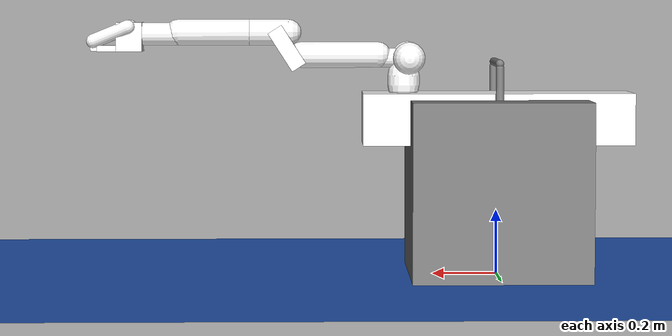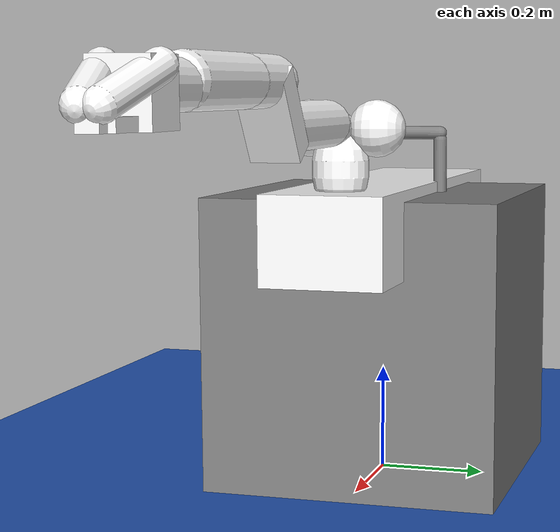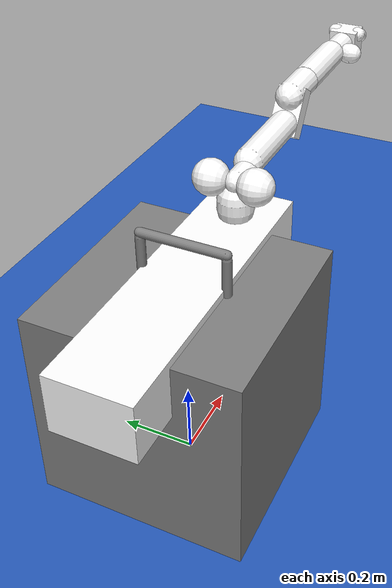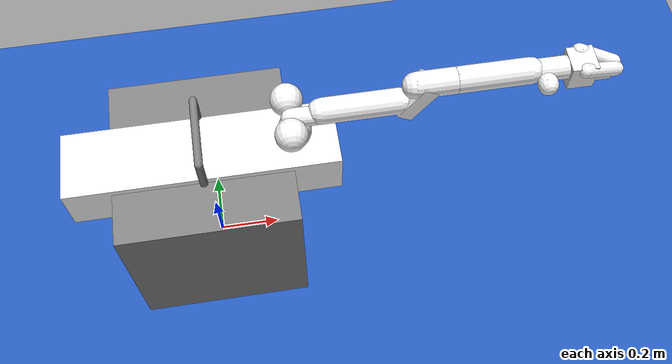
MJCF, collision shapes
<mujoco model="spot_standing_box">
<!-- Copyright (c) 2023 Robotics and AI Institute LLC dba RAI Institute. All rights reserved. -->
  <include file="spot_components/params_and_default.xml" />
  <include file="spot_components/assets.xml" />

  <worldbody>
    <geom name="ground" type="plane" size="2 2 0.01" friction="0.7" priority="5" material="blue_grid"/>

    <include file="spot_components/box_with_handle.xml" />

    <body name="body" pos="0 0 0.49">
      <inertial mass="32.86" pos="0 0 0" diaginertia="0.13143999874591827 0.13143999874591827 0.13143999874591827"/>
      <geom name="body_visual" class="visual" mesh="body_visual" material="yellow"/>
      <geom name="body" class="collision" type="box" size="0.42 0.11 0.08"/>
      <site name="site_body" pos="0 0 0" size="0.01"/>

      <!-- We can deactivate the fixed legs for faster simulation.  -->
      <!-- We'll reactivate them if they are critical. -->

      <include file="spot_components/arm_primitive.xml" />
    </body>
  </worldbody>

  <!-- for some reason necessary here but not for floating spot-->
  <contact>
    <exclude body1="body" body2="arm_link_sh0"/>
  </contact>

  <keyframe>
    <!-- mujoco q = [object_xyz, object_q, arm_and_gripper_pos] -->
    <key name="home" qpos="0 0 0.275  0 0 0 0  0 0 0 0 0 0  0" />
  </keyframe>

  <include file="spot_components/actuators_sensors.xml" />
</mujoco>

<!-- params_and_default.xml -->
<mujoco model="spot_default">
<!-- Copyright (c) 2023 Robotics and AI Institute LLC dba RAI Institute. All rights reserved. -->
  <compiler angle="radian" meshdir="../../meshes/spot/" autolimits="true"/>

  <option timestep="0.003" solver="Newton" density="1">
    <!-- iterations="5" ls_iterations="10" -->
  </option>

  <default>
    <default class="base">
      <joint damping="100" range="-5 5"/>
      <position kp="10" ctrlrange="-10 10" forcerange="-1000 1000"/>
    </default>
    <!-- The arm damping is higher than the damping gains in spot-sim, because actual joint damping is unknown -->
    <default class="arm">
      <default class="arm_sh0">
        <joint damping="51.0" range="-2.61799387799149441136 3.14159265358979311599"/>
        <position kp="1020.0" ctrlrange="-2.61799387799149441136 3.14159265358979311599" forcerange="-90.9 90.0"/>
      </default>
      <default class="arm_sh1">
        <joint damping="76.5" range="-3.14159265358979311599 0.52359877559829881565"/>
        <position kp="255" ctrlrange="-3.14159265358979311599 0.52359877559829881565" forcerange="-181.8 181.8"/>
      </default>
      <default class="arm_el0">
        <joint damping="51.0" range="0 3.14159265358979311599"/>
        <position kp="204.0" ctrlrange="0 3.14159265358979311599" forcerange="-90.9 90.0"/>
      </default>
      <default class="arm_el1">
        <joint damping="10.2" range="-2.79252680319092716487 2.79252680319092716487"/>
        <position kp="102.0" ctrlrange="-2.79252680319092716487 2.79252680319092716487" forcerange="-30.3 30.3"/>
      </default>
      <default class="arm_wr0">
        <joint damping="10.2" range="-1.83259571459404613236 1.83259571459404613236"/>
        <position kp="102.0" ctrlrange="-1.83259571459404613236 1.83259571459404613236" forcerange="-30.9 30.0"/>
      </default>
      <default class="arm_wr1">
        <joint damping="10.2" range="-2.87979326579064354163 2.87979326579064354163"/>
        <position kp="102.0" ctrlrange="-2.87979326579064354163 2.87979326579064354163" forcerange="-30.9 30.0"/>
      </default>
      <default class="arm_f1x">
        <joint damping="1.6" range="-1.57 0"/>
        <position kp="16.0" ctrlrange="-1.57 0" forcerange="-15.32 15.32"/>
      </default>
    </default>
    <default class="visual">
      <geom type="mesh" contype="0" conaffinity="0" group="2"/>
    </default>
    <default class="collision">
      <geom group="3" friction="0.15" priority="4" rgba="1 1 1 1" solimp="0.25 0.5 0.05 0.5 2" solref="0.01 10">
      </geom>
    </default>
    <default class="corner_contact">
      <geom type="sphere" size="1e-7" friction="0.5" priority="3"/>
    </default>

    <default class="leg">
      <default class="hip_x">
        <joint damping="26" range="-0.785398 0.785398"/>
        <position kp="78" ctrlrange="-0.785398 0.785398" forcerange="-145 145"/>
      </default>
      <default class="hip_y">
        <joint damping="26" range="-0.898845 2.29511"/>
        <position kp="117" ctrlrange="-0.898845 2.29511" forcerange="-145 145"/>
      </default>
      <default class="knee">
        <joint damping="10.2" range="-2.7929 -0.254801"/>
        <position kp="35.75" ctrlrange="-2.7929 -0.254801" forcerange="-145 145"/>
      </default>
    </default>

  </default>
</mujoco>

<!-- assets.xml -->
<mujoco model="spot_assets">
<!-- Copyright (c) 2023 Robotics and AI Institute LLC dba RAI Institute. All rights reserved. -->
  <asset>
    <texture name="blue_grid" type="2d" builtin="checker" rgb1=".02 .14 .44" rgb2=".27 .55 1" width="300" height="300" mark="edge" markrgb="1 1 1"/>
    <material name="blue_grid" texture="blue_grid" texrepeat="1 1" texuniform="true" reflectance=".2"/>

    <material name="black" rgba="0.2 0.2 0.3 1"/>
    <material name="yellow" rgba="1 0.8 0.03 1"/>
    <texture name="bdai_texture" type="2d" file="../../meshes/spot/bdaii_spot_wrap.png"/>
    <material name="bdai" texture="bdai_texture" specular="1" shininess="11"/>
    <material name="object" rgba=".7 .5 .3 1"/>

    <texture name="chess_texture" type="2d" builtin="checker" width="1024" height="1024" rgb1="1.0 0.27 0.1" rgb2="1.0 0.84 0.0"/>
    <material name="chess_material" texture="chess_texture"/>

    <mesh name="body" file="../../meshes/spot/base/collision/body_collision.obj"/>
    <mesh name="arm_link_sh0_base" file="../../meshes/spot/arm/collision/arm_link_sh0_base.obj"/>
    <mesh name="arm_link_sh0_left_motor" file="../../meshes/spot/arm/collision/arm_link_sh0_left_motor.obj"/>
    <mesh name="arm_link_sh0_right_motor" file="../../meshes/spot/arm/collision/arm_link_sh0_right_motor.obj"/>
    <mesh name="arm_link_sh1" file="../../meshes/spot/arm/collision/arm_link_sh1.obj"/>
    <mesh name="arm_link_el0" file="../../meshes/spot/arm/collision/arm_link_el0.obj"/>
    <mesh name="arm_link_el1" file="../../meshes/spot/arm/collision/arm_link_el1_main.obj"/>
    <mesh name="arm_link_el1_main" file="../../meshes/spot/arm/collision/arm_link_el1_main.obj"/>
    <mesh name="arm_link_el1_lip" file="../../meshes/spot/arm/collision/arm_link_el1_lip.obj"/>
    <mesh name="arm_link_wr0" file="../../meshes/spot/arm/collision/arm_link_wr0.obj"/>
    <mesh name="arm_link_wr1" file="../../meshes/spot/arm/collision/arm_link_wr1.obj"/>
    <mesh name="left_hinge" file="../../meshes/spot/gripper/collision/left_hinge.obj"/>
    <mesh name="left_finger" file="../../meshes/spot/gripper/collision/left_finger.obj"/>
    <mesh name="left_tooth" file="../../meshes/spot/gripper/collision/left_tooth.obj"/>
    <mesh name="right_hinge" file="../../meshes/spot/gripper/collision/right_hinge.obj"/>
    <mesh name="right_finger" file="../../meshes/spot/gripper/collision/right_finger.obj"/>
    <mesh name="right_tooth" file="../../meshes/spot/gripper/collision/right_tooth.obj"/>
    <mesh name="front_jaw" file="../../meshes/spot/gripper/collision/front_jaw.obj"/>
    <mesh name="middle_jaw" file="../../meshes/spot/gripper/collision/middle_jaw.obj"/>
    <mesh name="jaw_tooth" file="../../meshes/spot/gripper/collision/jaw_tooth.obj"/>

    <mesh name="body_visual" file="../../meshes/spot/base/visual/body.obj"/>
    <mesh name="arm_link_sh0_visual" file="../../meshes/spot/arm/visual/arm_link_sh0.obj"/>
    <mesh name="arm_link_sh1_visual" file="../../meshes/spot/arm/visual/arm_link_sh1.obj"/>
    <mesh name="arm_link_el0_visual" file="../../meshes/spot/arm/visual/arm_link_el0.obj"/>
    <mesh name="arm_link_el1_visual" file="../../meshes/spot/arm/visual/arm_link_el1.obj"/>
    <mesh name="arm_link_wr0_visual" file="../../meshes/spot/arm/visual/arm_link_wr0.obj"/>
    <mesh name="arm_link_wr1_visual" file="../../meshes/spot/arm/visual/arm_link_wr1.obj"/>
    <mesh name="arm_link_fngr_visual" file="../../meshes/spot/gripper/visual/arm_link_fngr.obj"/>

    <mesh name="left_upper_leg_collision" file="../../meshes/spot/base/collision/left_upper_leg_collision.obj"/>
    <mesh name="left_lower_leg_collision" file="../../meshes/spot/base/collision/left_lower_leg_collision.obj"/>
    <mesh name="right_upper_leg_collision" file="../../meshes/spot/base/collision/right_upper_leg_collision.obj"/>
    <mesh name="right_lower_leg_collision" file="../../meshes/spot/base/collision/right_lower_leg_collision.obj"/>

    <mesh name="front_left_hip_visual" file="../../meshes/spot/base/visual/front_left_hip.obj"/>
    <mesh name="front_left_lower_leg_visual" file="../../meshes/spot/base/visual/front_left_lower_leg.obj"/>
    <mesh name="front_left_upper_leg_visual" file="../../meshes/spot/base/visual/front_left_upper_leg.obj"/>

    <mesh name="front_right_hip_visual" file="../../meshes/spot/base/visual/front_right_hip.obj"/>
    <mesh name="front_right_lower_leg_visual" file="../../meshes/spot/base/visual/front_right_lower_leg.obj"/>
    <mesh name="front_right_upper_leg_visual" file="../../meshes/spot/base/visual/front_right_upper_leg.obj"/>

    <mesh name="rear_left_hip_visual" file="../../meshes/spot/base/visual/rear_left_hip.obj"/>
    <mesh name="rear_left_lower_leg_visual" file="../../meshes/spot/base/visual/rear_left_lower_leg.obj"/>
    <mesh name="rear_left_upper_leg_visual" file="../../meshes/spot/base/visual/rear_left_upper_leg.obj"/>

    <mesh name="rear_right_hip_visual" file="../../meshes/spot/base/visual/rear_right_hip.obj"/>
    <mesh name="rear_right_lower_leg_visual" file="../../meshes/spot/base/visual/rear_right_lower_leg.obj"/>
    <mesh name="rear_right_upper_leg_visual" file="../../meshes/spot/base/visual/rear_right_upper_leg.obj"/>
  </asset>
</mujoco>

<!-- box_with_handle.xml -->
<mujoco model="spot_box_with_handle">
<!-- Copyright (c) 2023 Robotics and AI Institute LLC dba RAI Institute. All rights reserved. -->
  <body name="object" pos="0 0 0.275">
    <joint name="object_joint" type="free"/>
    <inertial pos="0 0 0" mass="1.72" diaginertia="0.01 0.01 0.01"/>

    <geom name="c1" pos="0.275 0.275 0.275" class="corner_contact"/>
    <geom name="c2" pos="-0.275 0.275 0.275" class="corner_contact"/>
    <geom name="c3" pos="0.275 -0.275 0.275" class="corner_contact"/>
    <geom name="c4" pos="-0.275 -0.275 0.275" class="corner_contact"/>
    <geom name="c5" pos="0.275 0.275 -0.275" class="corner_contact"/>
    <geom name="c6" pos="-0.275 0.275 -0.275" class="corner_contact"/>
    <geom name="c7" pos="0.275 -0.275 -0.275" class="corner_contact"/>
    <geom name="c8" pos="-0.275 -0.275 -0.275" class="corner_contact"/>
    <geom name="box_contact" type="box" size="0.275 0.275 0.275" priority="3"/>

    <geom name="handle_left" type="capsule" size="0.0125 0.05" pos="0 0.1125 0.325" priority="3"/>
    <geom name="handle_right" type="capsule" size="0.0125 0.05" pos="0 -0.1125 0.325" priority="3"/>
    <geom name="handle_top" type="capsule" size="0.0125 0.1125" pos="0 0 0.3875" euler="1.57 0 0" priority="3"/>

    <site name="site_object" pos="0 0 0" size="0.01"/>
  </body>
</mujoco>

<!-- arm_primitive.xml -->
<mujoco model="spot_arm">
<!-- Copyright (c) 2023 Robotics and AI Institute LLC dba RAI Institute. All rights reserved. -->
    <body name="arm_link_sh0" pos="0.292 0 0.188" gravcomp="1">
      <joint name="arm_sh0" class="arm_sh0" type="hinge" axis="0 0 1" pos="0 0 0"/>
      <inertial mass="2.3364000000000003" diaginertia="0.009014303010689815 0.005835102417829581 0.00778747846359954" pos="-0.012372709810733795 -4.5211403630673885e-05 -0.02103196457028389" euler="0.0013490340912847287 -0.15433618253071657 0.0066354181456347305" />
      <geom name="arm_link_sh0_visual" class="visual" mesh="arm_link_sh0_visual" material="black"/>
      <geom name="arm_link_sh0_base" class="collision" type="capsule" size="0.05 0.015" pos="0 0 -0.07"/>
      <geom name="arm_link_sh0_left_motor" class="collision" type="sphere" size="0.05" pos="-0.015 -0.062 0" zaxis="0 1 0"/>
      <geom name="arm_link_sh0_right_motor" class="collision" type="sphere" size="0.05" pos="-0.015 0.062 0" zaxis="0 1 0"/>
      <site name="site_arm_link_sh0" pos="0 0 0" size="0.01"/>

      <body name="arm_link_sh1" pos="0 0 0" gravcomp="1">
        <joint name="arm_sh1" class="arm_sh1" type="hinge" axis="0 1 0" pos="0 0 0"/>
        <inertial mass="0.2596" diaginertia="6.312631747339145e-10 1.1487063558949979e-08 1.161105128440526e-08" pos="0.17047011852264404 -0.0019251034827902913 4.483893280848861e-05" euler="-0.01179850657706405 0.0002834144901480151 -0.02372295500868482" />
        <geom name="arm_link_sh1_visual" class="visual" mesh="arm_link_sh1_visual" material="yellow"/>
        <geom name="arm_link_sh1_base" class="collision" type="capsule" size="0.03 0.04" pos="0.03 -0.005 0" zaxis="1 0 0"/>
        <geom name="arm_link_sh1_body" class="collision" type="capsule" size="0.04 0.12" pos="0.2 0 0.01" zaxis="1 0 0"/>
        <site name="site_arm_link_sh1" pos="0 0 0" size="0.01"/>

        <body name="arm_link_el0" pos="0.3385 0 0" gravcomp="1">
          <joint name="arm_el0" class="arm_el0" type="hinge" axis="0 1 0" pos="0 0 0"/>
          <inertial mass="0.725" diaginertia="0.0008215365829160558 0.0020047889807066404 0.0019722797759789395" pos="0.0553741455078125 0.00023603376757819206 0.04827198013663292" euler="-0.004185887288594259 -0.6136269547775202 -0.0004619387581783485" />
          <geom name="arm_link_el0_visual" class="visual" mesh="arm_link_el0_visual" material="black"/>
          <geom name="arm_link_el0_joint" class="collision" type="box" size="0.07 0.04 0.025" pos="0.025 0 0.03" euler= "0 -1 0"/>
          <geom name="arm_link_el0_body" class="collision" type="capsule" size="0.04 0.06" pos="0.08 0 0.08" zaxis="1 0 0"/>
          <site name="site_arm_link_el0" pos="0 0 0" size="0.01"/>

          <body name="arm_link_el1" pos="0.40330 0.0 0.0750" gravcomp="1">
            <joint name="arm_el1" class="arm_el1" type="hinge" axis="1 0 0" pos="0 0 0"/>
            <inertial mass="0.725" diaginertia="0.0006254807525240598 0.004402454711936095 0.004515915146038191" pos="-0.1257835328578949 -0.013684478588402271 0.00010157923679798841" euler="-0.15027374227250867 -0.0007874585461915551 0.003728225436950172" />
            <geom name="arm_link_el1_visual" class="visual" mesh="arm_link_el1_visual" material="yellow"/>
            <geom name="arm_link_el1" type="capsule" class="collision" size="0.04 0.11" pos="-0.15 0 0.005" zaxis="1 0 0"/>
            <site name="site_arm_link_el1" pos="0 0 0" size="0.01"/>

            <body name="arm_link_wr0" pos="0 0 0" gravcomp="1">
              <joint name="arm_wr0" class="arm_wr0" type="hinge" axis="0 1 0" pos="0 0 0"/>
              <inertial mass="0.98" diaginertia="0.0009851320696685427 0.0008916145765810678 0.0012354892751854467" pos="0.008210677653551102 -0.012051000259816647 3.143483627354726e-05" euler="-0.4951534907966386 0.0033720434077784134 0.020027599337697932" />
              <geom name="arm_link_wr0_visual" class="visual" mesh="arm_link_wr0_visual" material="black"/>
              <geom name="arm_link_wr0_knob" class="collision" type="capsule" size="0.03 0.005" pos="0 -0.05 0" zaxis="0 1 0"/>
              <geom name="arm_link_wr0_main" class="collision" type="capsule" size="0.035 0.08" zaxis="1 0 0"/>
              <site name="site_arm_link_wr0" pos="0 0 0" size="0.01"/>

              <body name="arm_link_wr1" pos="0 0 0" gravcomp="1">
                <joint name="arm_wr1" class="arm_wr1" type="hinge" axis="1 0 0" pos="0 0 0"/>
                <inertial mass="0.785" diaginertia="0.00076741362048185 0.0017628124054271809 0.0016818105865345951" pos="0.12516802549362183 0.00010137435310753062 -0.013997982256114483" euler="0.006393076449033863 0.2928526604761865 -0.022814984050994802" />
                <geom name="arm_link_wr1_visual" class="visual" mesh="arm_link_wr1_visual" material="yellow"/>
                <geom name="arm_link_wr1" class="collision" type="box" size="0.04 0.042 0.045" pos="0.11 0 -0.0095" />
                <geom name="bottom_jaw" class="collision" type="box" size="0.03 0.025 0.009" pos="0.18 0 -0.045" />
                <geom name="front_jaw" class="collision" type="box" size="0.016 0.015 0.009" pos="0.215 0 -0.045" />
                <geom name="front_jaw_tooth" class="collision" type="box" size="0.005 0.01 0.005" pos="0.224 0 -0.039" euler="0 1 0" />
                <site name="site_arm_link_wr1" pos="0 0 0" size="0.01"/>

                <body name="arm_link_fngr" pos="0.1174 0.0 0.0148" gravcomp="1">
                  <joint name="arm_f1x" class="arm_f1x" type="hinge" axis="0 1 0" pos="0 0 0"/>
                  <inertial mass="0.2" diaginertia="0.000144 0.000300 0.000391" pos="0.0478 -0.0002 -0.0163" euler="0.000342 0.375167 -0.004059" />
                  <geom name="arm_link_fngr_visual" class="visual" mesh="arm_link_fngr_visual" material="black"/>
                  <geom name="left_jaw" type="capsule" class="collision" size="0.022 0.06" pos="0.05 -0.025 -0.015" euler="0.5 2.0 0"/>
                  <geom name="right_jaw" type="capsule" class="collision" size="0.022 0.06" pos="0.05 0.025 -0.015" euler="-0.5 2.0 0"/>
                  <site name="site_arm_link_fngr" pos="0 0 0" size="0.01"/>
                </body>
              </body>
            </body>
          </body>
        </body>
      </body>
    </body>
</mujoco>

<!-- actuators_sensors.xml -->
<mujoco model="spot_floating">
<!-- Copyright (c) 2023 Robotics and AI Institute LLC dba RAI Institute. All rights reserved. -->
  <actuator>
    <position name="act_3" joint="arm_sh0" class="arm_sh0"/>
    <position name="act_4" joint="arm_sh1" class="arm_sh1"/>
    <position name="act_5" joint="arm_el0" class="arm_el0"/>
    <position name="act_6" joint="arm_el1" class="arm_el1"/>
    <position name="act_7" joint="arm_wr0" class="arm_wr0"/>
    <position name="act_8" joint="arm_wr1" class="arm_wr1"/>
    <position name="act_9" joint="arm_f1x" class="arm_f1x"/>
  </actuator>

  <sensor>
    <framepos name="sensor_body" objtype="site" objname="site_body" reftype="site" refname="site_object" />
    <framepos name="sensor_arm_link_sh0" objtype="site" objname="site_arm_link_sh0" reftype="site" refname="site_object" />
    <framepos name="sensor_arm_link_sh1" objtype="site" objname="site_arm_link_sh1" reftype="site" refname="site_object" />
    <framepos name="sensor_arm_link_el0" objtype="site" objname="site_arm_link_el0" reftype="site" refname="site_object" />
    <framepos name="sensor_arm_link_el1" objtype="site" objname="site_arm_link_el1" reftype="site" refname="site_object" />
    <framepos name="sensor_arm_link_wr0" objtype="site" objname="site_arm_link_wr0" reftype="site" refname="site_object" />
    <framepos name="sensor_arm_link_wr1" objtype="site" objname="site_arm_link_wr1" reftype="site" refname="site_object" />
    <framepos name="sensor_arm_link_fngr" objtype="site" objname="site_arm_link_fngr" reftype="site" refname="site_object" />
  </sensor>

</mujoco>
